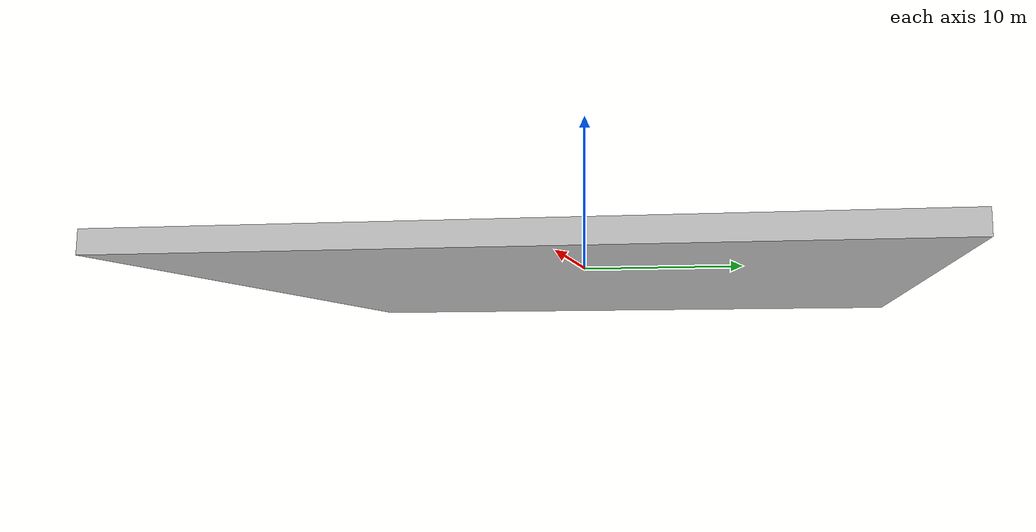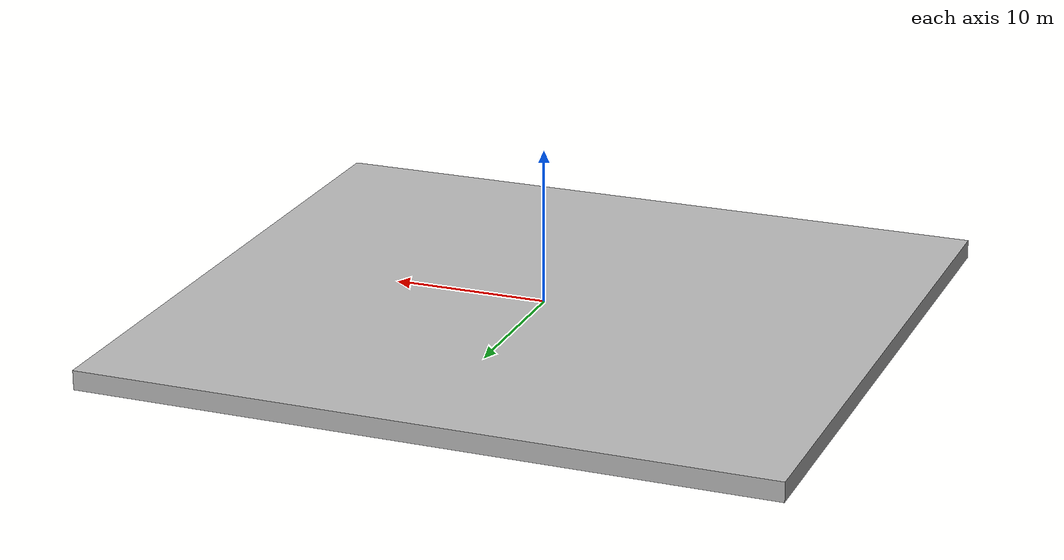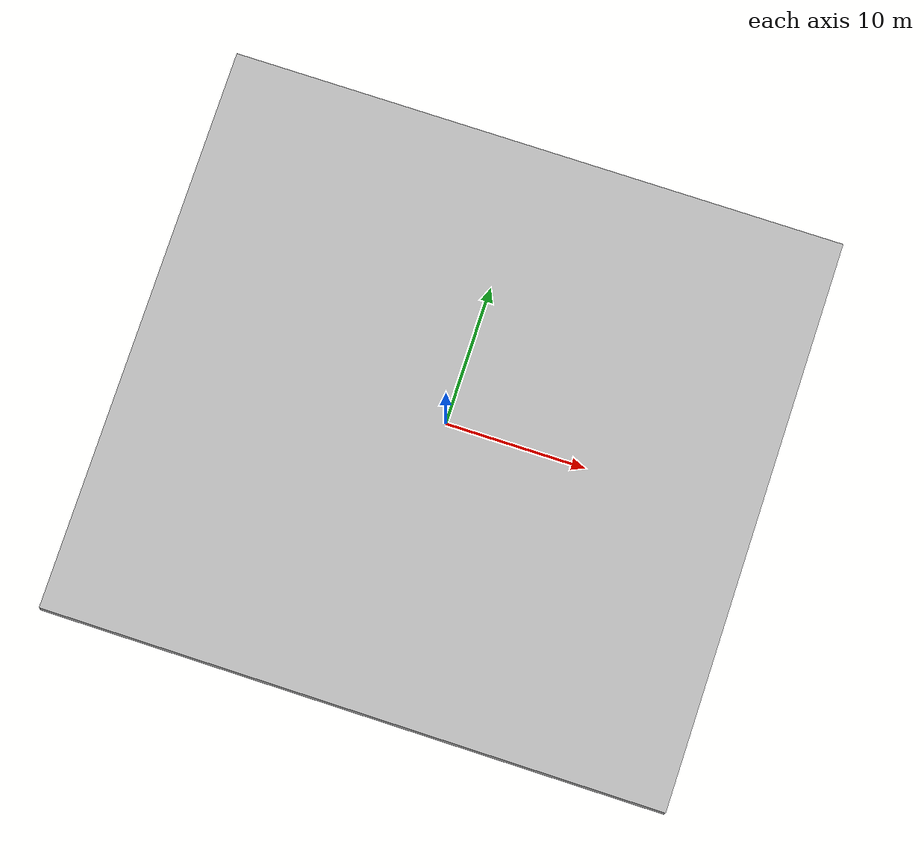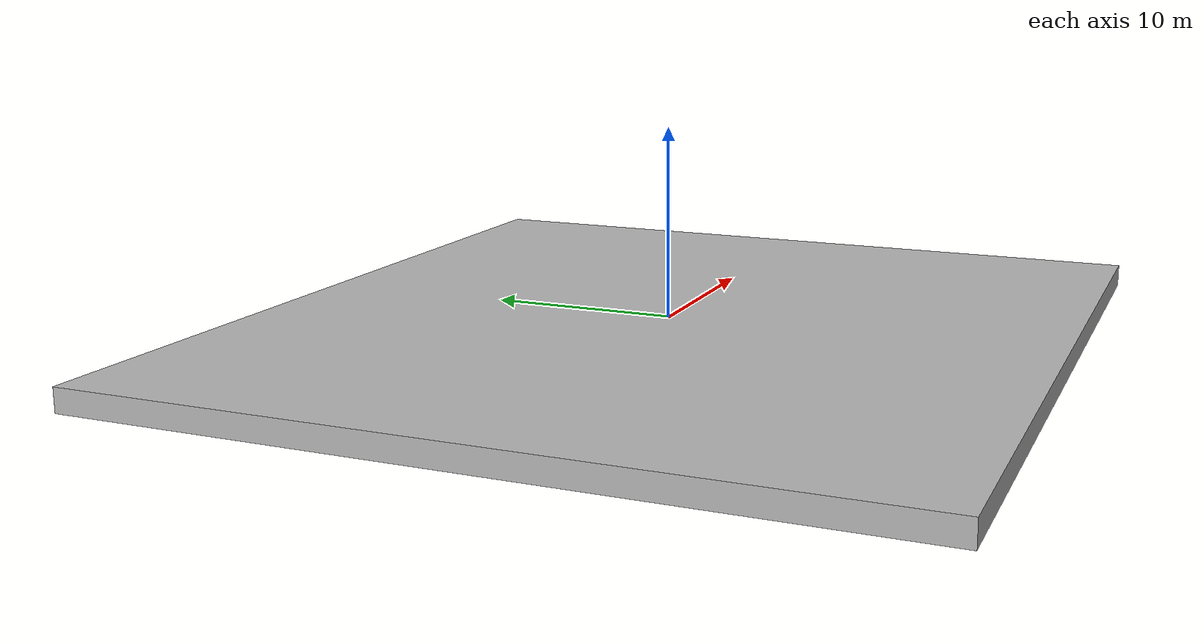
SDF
<?xml version="1.0"?>
<sdf version="1.4">
    <model name="candyfloor">
        <pose>0 0 0 0 0 0</pose>
        <static>true</static>
        <link name="candyfloor_body">
            <visual name="visual">
                <geometry>
                    <mesh>
                       <uri>model://candyfloor/visual.osg</uri>
                    </mesh>
                </geometry>
            </visual>
            <collision name="collision">
                <geometry>
                    <mesh>
                        <uri>model://candyfloor/collision.stl</uri>
                    </mesh>
                </geometry>
            </collision>
            <inertial>
                <pose>0 0 -1 0 0 0</pose>
                <inertia>
                    <ixx>0.0</ixx>
                    <ixy>0</ixy>
                    <ixz>0.0</ixz>
                    <iyy>0.0</iyy>
                    <iyz>0</iyz>
                    <izz>0.0</izz>
                </inertia>
                <mass>1.0</mass>
            </inertial>
        </link>
    </model>
</sdf>
